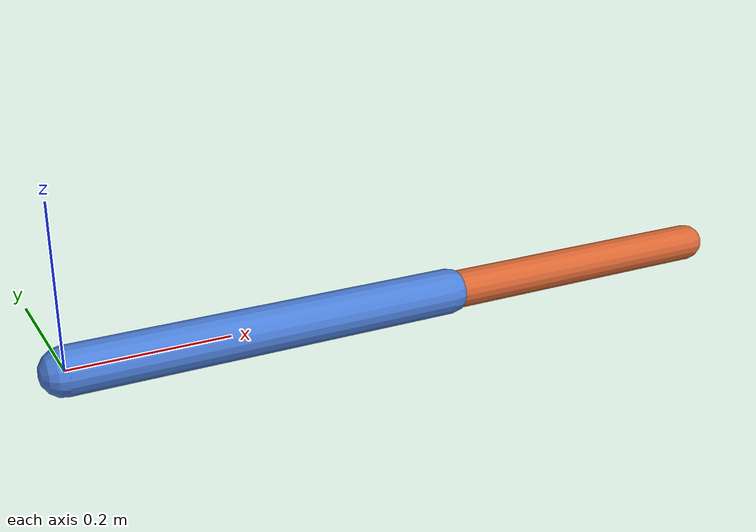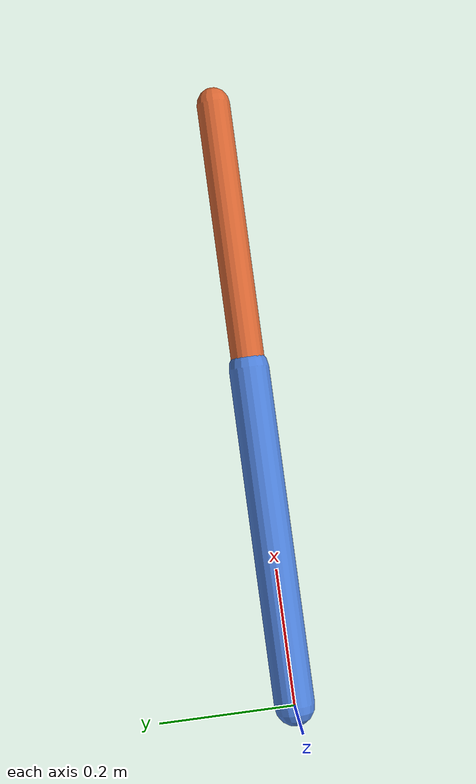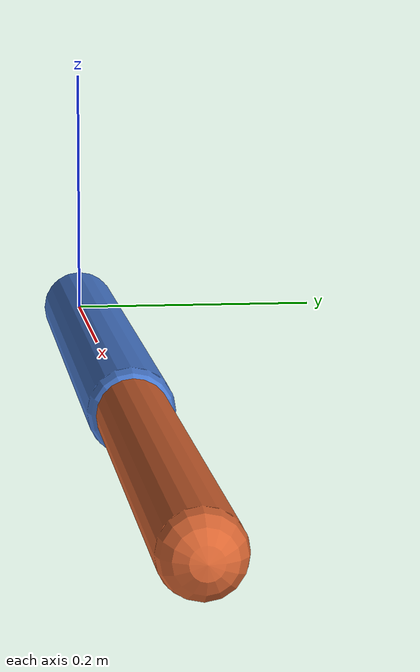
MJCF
<mujoco model="reaching-arm">
  <compiler angle="radian" inertiafromgeom="true"/>
  <option gravity="0 0 -9.81" timestep="0.002" integrator="RK4">
    <flag contact="disable"/>
  </option>
  <default>
    <geom contype="0" conaffinity="0"/>
  </default>
  <worldbody>
    <body name="upper_arm" pos="0 0 0">
      <joint name="shoulder" type="hinge" axis="0 -1 0"
             limited="true" range="-3.14159 3.14159" damping="2.0"/>
      <geom name="upper_geom" type="capsule" fromto="0 0 0 0.5 0 0"
            size="0.03" mass="0.5" rgba="0.3 0.5 0.85 1"/>
      <body name="forearm" pos="0.5 0 0">
        <joint name="elbow" type="hinge" axis="0 -1 0"
               limited="true" range="-2.6 2.6" damping="1.0"/>
        <geom name="forearm_geom" type="capsule" fromto="0 0 0 0.4 0 0"
              size="0.025" mass="0.3" rgba="0.85 0.4 0.2 1"/>
        <site name="fingertip" pos="0.4 0 0" size="0.015"/>
      </body>
    </body>
  </worldbody>
  <actuator>
    <motor name="shoulder_motor" joint="shoulder" gear="10"
           ctrllimited="true" ctrlrange="-1 1"/>
    <motor name="elbow_motor" joint="elbow" gear="5"
           ctrllimited="true" ctrlrange="-1 1"/>
  </actuator>
</mujoco>
